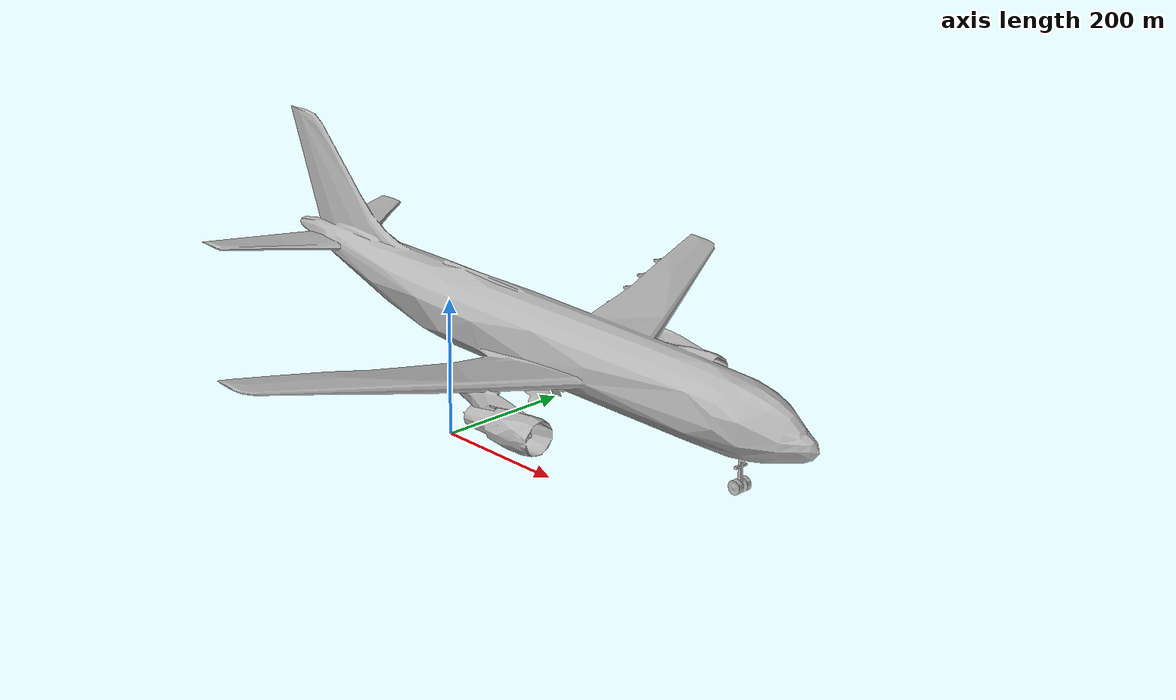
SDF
<?xml version="1.0" ?>
<sdf version="1.4">
 <model name="aircraft">
    <link name="link">
     <collision name="collision">
       <pose>0 50 0 0 0 0</pose>
       <geometry>
         <mesh>
           <uri>model://aircraft/airbus.dae</uri>
         </mesh>
       </geometry>
     </collision>
     <visual name="visual">
       <pose>0 50 0 0 0 0</pose>
       <geometry>
         <mesh>
           <uri>model://aircraft/airbus.dae</uri>
         </mesh>
       </geometry>
     </visual>
    </link>
 </model>
</sdf>
